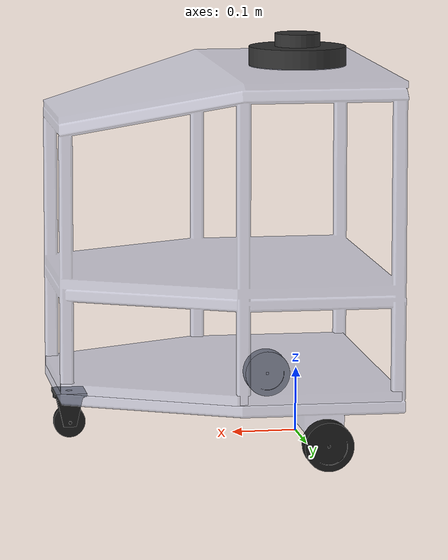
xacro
<?xml version="1.0"?>
<robot xmlns:xacro="http://www.ros.org/wiki/xacro" name="amr_003">

    <xacro:arg name="use_ros2_control" default="true"/>
    <xacro:arg name="sim_mode" default="true"/>
    <xacro:include filename="robot_core.xacro" />

    <xacro:if value="$(arg use_ros2_control)">
        <xacro:include filename="ros2_control.xacro" />
    </xacro:if>
    <xacro:unless value="$(arg use_ros2_control)">
        <xacro:include filename="gazebo_control.xacro" />
    </xacro:unless>
    <xacro:include filename="lidar.xacro" />

</robot>

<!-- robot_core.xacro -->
<robot xmlns:xacro="http://www.ros.org/wiki/xacro">

    <xacro:include filename="inertial_macros.xacro"/>

    <material name="white"><color rgba="1 1 1 1" /></material>
    <material name="black"><color rgba="0.1 0.1 0.1 1" /></material>
    <material name="transparent_white"><color rgba="0.79216 0.81961 0.93333 0.6" /></material>

    <link name="base_footprint"/>
    <joint name="base_footprint_joint" type="fixed">
        <parent link="base_footprint"/>
        <child link="base_link"/>
        <origin xyz="0 0 0.0445" rpy="0 0 0"/>
    </joint>

    <link name="base_link">
        <inertial>
            <origin xyz="0.106814398044022 0 0.057" rpy="0 0 0"/>
            <mass value="3.2625"/>
            <inertia ixx="0.056906796875" ixy="0" ixz="0" iyy="0.0609283294420498" iyz="0" izz="0.11771278256705"/>
        </inertial>
        <visual>
            <origin xyz="0 0 0" rpy="0 0 0"/>
            <geometry><mesh filename="package://amr_003/meshes/base_link.STL"/></geometry>
            <material name="transparent_white"/>
        </visual>
        <collision>
            <origin xyz="0 0 0.15" rpy="0 0 0"/>
            <geometry><box size="0.45 0.35 0.1"/></geometry>
        </collision>
    </link>

    <link name="chassis_link">
        <inertial>
            <origin xyz="0.222980078166213 0 0.05" rpy="0 0 0" />
            <mass value="7.00166781646683" />
            <inertia ixx="0.109362090239879" ixy="0" ixz="0.00489513284151782" iyy="0.11176801072697" iyz="0" izz="0.208620108039956" />
        </inertial>
        <visual>
            <origin xyz="0 0 0" rpy="0 0 0"/>
            <geometry><mesh filename="package://amr_003/meshes/chassis_link.STL"/></geometry>
            <material name="transparent_white"/>
        </visual>
    </link>
    <joint name="chassis_joint" type="fixed">
        <origin xyz="-0.12372 0 0.0345" rpy="0 0 0"/>
        <parent link="base_link"/>
        <child link="chassis_link"/>
    </joint>

    <link name="left_wheel_link">
        <inertial>
            <origin xyz="0 0 0" rpy="0 0 0"/>
            <mass value="1.0"/>
            <inertia ixx="0.001" ixy="0" ixz="0" iyy="0.001" iyz="0" izz="0.001" />
        </inertial>
        <visual>
            <origin xyz="0 0 0" rpy="0 0 0"/>
            <geometry><mesh filename="package://amr_003/meshes/left_wheel_link.STL"/></geometry>
            <material name="black"/>
        </visual>
        <collision>
            <origin xyz="0 0 0" rpy="0 0 0"/>
            <geometry><sphere radius="0.037"/></geometry>
        </collision>
    </link>
    <joint name="left_wheel_joint" type="continuous">
        <origin xyz="0 0.286 -0.0075" rpy="-1.5708 0 0"/>
        <parent link="base_link"/>
        <child link="left_wheel_link"/>
        <axis xyz="0 0 1"/>
        <limit effort="10.0" velocity="20.0"/>
    </joint>

    <link name="right_wheel_link">
        <inertial>
            <origin xyz="0 0 0" rpy="0 0 0"/>
            <mass value="1.0"/>
            <inertia ixx="0.001" ixy="0" ixz="0" iyy="0.001" iyz="0" izz="0.001" />
        </inertial>
        <visual>
            <origin xyz="0 0 0" rpy="0 0 0"/>
            <geometry><mesh filename="package://amr_003/meshes/right_wheel_link.STL"/></geometry>
            <material name="black"/>
        </visual>
        <collision>
            <origin xyz="0 0 0" rpy="0 0 0"/>
            <geometry><sphere radius="0.037"/></geometry>
        </collision>
    </link>
    <joint name="right_wheel_joint" type="continuous">
        <origin xyz="0 -0.286 -0.0075" rpy="-1.5708 0 0"/>
        <parent link="base_link"/>
        <child link="right_wheel_link"/>
        <axis xyz="0 0 1"/>
        <limit effort="10.0" velocity="20.0"/>
    </joint>

    <link name="bracker_link">
        <visual>
            <origin xyz="0 0 0" rpy="0 0 0"/>
            <geometry><mesh filename="package://amr_003/meshes/bracker_link.STL"/></geometry>
            <material name="black"/>
        </visual>
    </link>
    <joint name="bracker_joint" type="fixed">
        <origin xyz="0.35672 -0.00047549 0.0245" rpy="0 0 0"/>
        <parent link="base_link"/>
        <child link="bracker_link"/>
    </joint>

    <link name="caster_wheel_link">
        <visual>
            <origin xyz="0 0 0" rpy="0 0 0"/>
            <geometry><mesh filename="package://amr_003/meshes/caster_wheel_link.STL"/></geometry>
            <material name="black"/>
        </visual>
    </link>
    <joint name="caster_wheel_joint" type="fixed">
        <origin xyz="0 0.00047549 -0.043" rpy="-1.5708 0 0"/>
        <parent link="bracker_link"/>
        <child link="caster_wheel_link"/>
    </joint>

    <link name="front_caster_collision_link">
        <inertial>
            <origin xyz="0 0 0" rpy="0 0 0"/>
            <mass value="3.0"/>
            <inertia ixx="0.01" ixy="0" ixz="0" iyy="0.01" iyz="0" izz="0.01"/>
        </inertial>
        <collision>
            <origin xyz="0 0 0" rpy="0 0 0"/>
            <geometry><sphere radius="0.026"/></geometry>
        </collision>
    </link>
    <joint name="front_caster_collision_joint" type="fixed">
        <origin xyz="0.415 0 -0.0185" rpy="0 0 0"/>
        <parent link="base_link"/>
        <child link="front_caster_collision_link"/>
    </joint>

    <link name="rear_caster_collision_link">
        <inertial>
            <origin xyz="0 0 0" rpy="0 0 0"/>
            <mass value="1.0"/>
            <inertia ixx="0.01" ixy="0" ixz="0" iyy="0.01" iyz="0" izz="0.01"/>
        </inertial>
        <collision>
            <origin xyz="0 0 0" rpy="0 0 0"/>
            <geometry><sphere radius="0.026"/></geometry>
        </collision>
    </link>
    <joint name="rear_caster_collision_joint" type="fixed">
        <origin xyz="-0.35 0 -0.0185" rpy="0 0 0"/>
        <parent link="base_link"/>
        <child link="rear_caster_collision_link"/>
    </joint>

    <gazebo reference="base_link"><material>Gazebo/Orange</material></gazebo>
    <gazebo reference="chassis_link"><material>Gazebo/Grey</material></gazebo>

    <gazebo reference="left_wheel_link">
        <mu1>1.5</mu1> <mu2>1.5</mu2>
        <kp>1000000.0</kp>
        <kd>100.0</kd>
        <minDepth>0.001</minDepth>
        <maxVel>0.0</maxVel>
        <material>Gazebo/FlatBlack</material>
    </gazebo>

    <gazebo reference="right_wheel_link">
        <mu1>1.5</mu1> <mu2>1.5</mu2>
        <kp>1000000.0</kp>
        <kd>100.0</kd>
        <minDepth>0.001</minDepth>
        <maxVel>0.0</maxVel>
        <material>Gazebo/FlatBlack</material>
    </gazebo>

    <gazebo reference="front_caster_collision_link">
        <mu1>0.0</mu1> <mu2>0.0</mu2>
        <kp>1000000.0</kp>
        <kd>100.0</kd>
        <minDepth>0.001</minDepth>
        <maxVel>0.0</maxVel>
    </gazebo>

    <gazebo reference="rear_caster_collision_link">
        <mu1>0.0</mu1> <mu2>0.0</mu2>
        <kp>1000000.0</kp>
        <kd>100.0</kd>
        <minDepth>0.001</minDepth>
        <maxVel>0.0</maxVel>
    </gazebo>

</robot>

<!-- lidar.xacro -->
<robot xmlns:xacro="http://www.ros.org/wiki/xacro">

    <joint name="laser_joint" type="fixed">
        <!-- Vị trí lấy từ URDF SolidWorks mới (lidar_joint) -->
        <!-- x=0.057994, y≈0, z=0.5808 so với base_link -->
        <origin xyz="-0.00063688 0.00045389 0.58047" rpy="0 0 0"/>
        <parent link="base_link"/>
        <child link="laser_frame"/>
    </joint>

    <link name="laser_frame">
        <inertial>
            <origin xyz="0 0 0" rpy="0 0 0"/>
            <mass value="0.2"/>
            <inertia
                ixx="0.001" ixy="0" ixz="0"
                iyy="0.001" iyz="0"
                izz="0.001"/>
        </inertial>
        <visual>
            <origin xyz="0 0 0" rpy="0 0 0"/>
            <geometry>
                <!-- Dùng mesh STL từ SolidWorks export -->
                <mesh filename="package://amr_003/meshes/lidar_link.STL"/>
            </geometry>
            <material name="">
                <color rgba="0.2 0.2 0.2 1"/>
            </material>
        </visual>
        <collision>
            <origin xyz="0 0 0" rpy="0 0 0"/>
            <geometry>
                <!-- Dùng cylinder đơn giản cho collision (nhanh hơn mesh) -->
                <cylinder radius="0.05" length="0.04"/>
            </geometry>
        </collision>
    </link>

    <gazebo reference="laser_frame">
        <material>Gazebo/Black</material>
        <sensor name="laser" type="ray">
            <pose>0 0 0 0 0 0</pose>
            <visualize>false</visualize>
            <update_rate>10.0</update_rate>
            <ray>
                <scan>
                    <horizontal>
                        <samples>360</samples>
                        <min_angle>-3.14159</min_angle>
                        <max_angle>3.14159</max_angle>
                    </horizontal>
                </scan>
                <range>
                    <min>0.3</min>
                    <max>12.0</max>
                </range>
            </ray>
            <plugin name="laser_controller" filename="libgazebo_ros_ray_sensor.so">
                <ros>
                    <argument>~/out:=scan</argument>
                </ros>
                <output_type>sensor_msgs/LaserScan</output_type>
                <frame_name>laser_frame</frame_name>
            </plugin>
        </sensor>
    </gazebo>

</robot>
